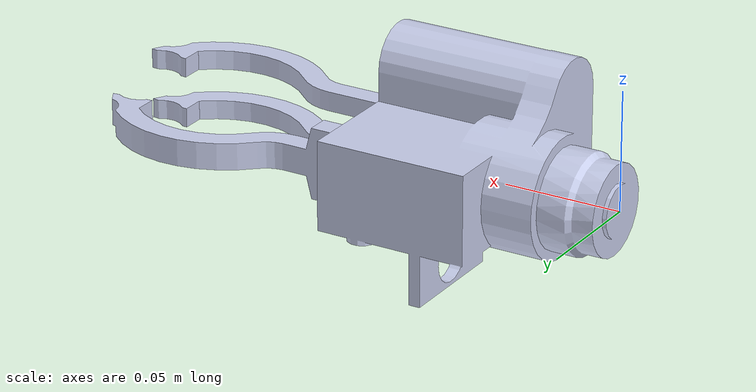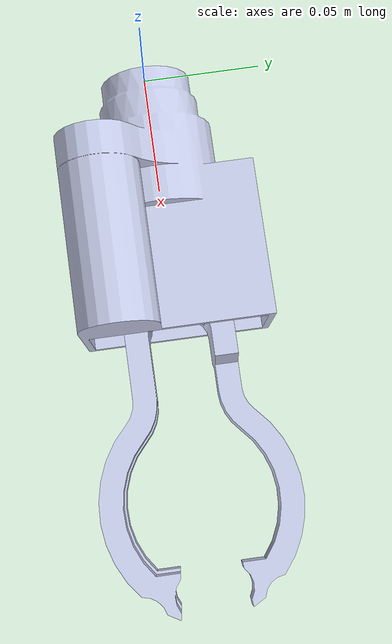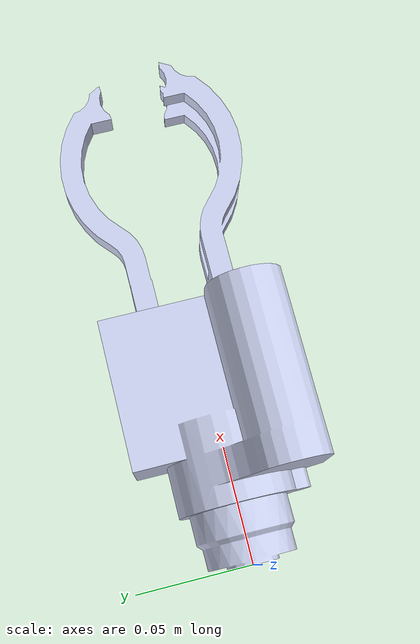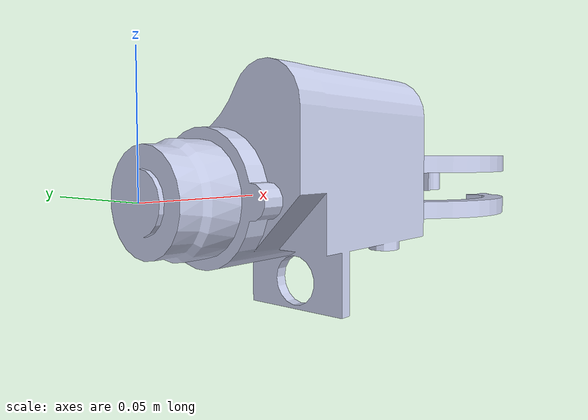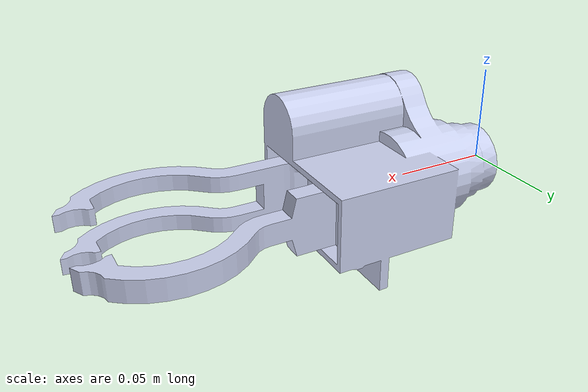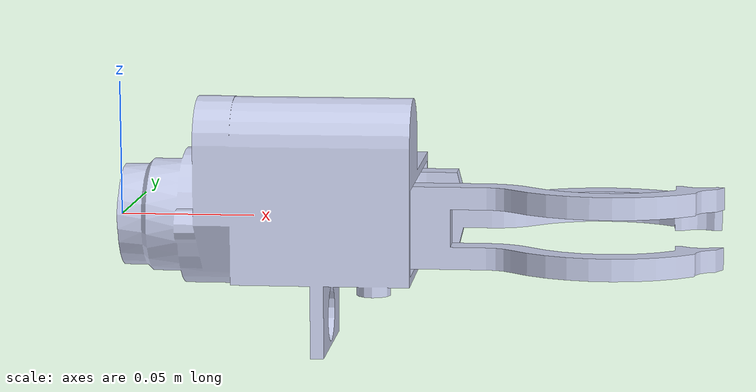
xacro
<?xml version="1.0"?>
<robot name="two_finger_gripper" xmlns:xacro="http://www.ros.org/wiki/xacro">

  <xacro:property name="finger_mechanical_reduction" value="304.0"/>
  <xacro:property name="finger_motor_torque_constant" value="3.0"/>
  <xacro:property name="joint_effort_limit" value="3.0"/>
  <xacro:property name="joint_velocity_limit" value="2.98452"/>
	<xacro:property name="finger_lower_limit" value="-0.5"/>
	<xacro:property name="finger_upper_limit" value="0.5"/>

  <xacro:include filename="$(find rb1_arm_description)/urdf/grippers/two_finger_gripper.gazebo.xacro" />

  <link
    name="base_link_gripper">
    <inertial>
      <origin
        xyz="0.0 0.0 0.0"
        rpy="0 0 0" />
      <mass
        value="0.2735" />
      <inertia
        ixx="0.2735"
        ixy="0.0"
        ixz="0.0"
        iyy="0.2735"
        iyz="0.0"
        izz="0.2735" />
    </inertial>
    <visual>
      <origin
        xyz="0 0 0"
        rpy="0 0 0" />
      <geometry>
        <mesh
          filename="package://rb1_arm_description/meshes/grippers/base_gripper.dae" />
      </geometry>
      <material
        name="">
        <color
          rgba="0.79216 0.81961 0.93333 1" />
      </material>
    </visual>
    <collision>
      <origin
        xyz="0 0 0"
        rpy="0 0 0" />
      <geometry>
        <mesh
          filename="package://rb1_arm_description/meshes/grippers/base_gripper.dae" />
      </geometry>
      <contact_coefficients kd="1.0" kp="1000.0" mu="0"/>
    </collision>
  </link>

  <link
    name="link_finger1">
    <inertial>
      <origin
        xyz="0.0 0.0 0.0"
        rpy="0 0 0" />
      <mass
        value="0.03" />
      <inertia
        ixx="0.03"
        ixy="0.0"
        ixz="0.0"
        iyy="0.03"
        iyz="0.0"
        izz="0.03" />
    </inertial>
    <visual>
      <origin
        xyz="0 0 0"
        rpy="0 0 0" />
      <geometry>
        <mesh
          filename="package://rb1_arm_description/meshes/grippers/finger1.dae" />
      </geometry>
      <material
        name="">
        <color
          rgba="0.792156862745098 0.819607843137255 0.933333333333333 1" />
      </material>
    </visual>
    <collision>
      <origin
        xyz="0 0 0"
        rpy="0 0 0" />
      <geometry>
        <mesh
          filename="package://rb1_arm_description/meshes/grippers/finger1.dae" />
      </geometry>
    </collision>
  </link>

  <joint
    name="jg1"
    type="revolute">
    <origin
      xyz="0.097993 0.028575 0"
      rpy="3.0028E-16 5.9154E-22 2.2204E-16" />
    <parent
      link="base_link_gripper" />
    <child
      link="link_finger1" />
    <axis
      xyz="0 0 -1" />
    <limit effort="${joint_effort_limit}" velocity="${joint_velocity_limit}" upper="${finger_upper_limit}" lower="${finger_lower_limit}"/>
    <dynamics damping="${joint_damping}" friction="${joint_friction}"/>
  </joint>

  <transmission name="jg1_trans">
	 <type>transmission_interface/SimpleTransmission</type>
     <joint name="jg1">
		<hardwareInterface>EffortJointInterface</hardwareInterface>
	 </joint>
     <actuator name="jg1_motor">
        <mechanicalReduction>${finger_mechanical_reduction}</mechanicalReduction>
		<motorTorqueConstant>${finger_motor_torque_constant}</motorTorqueConstant>
	 </actuator>
  </transmission>

  <link
    name="link_finger2">
    <inertial>
      <origin
        xyz="0.0 0.0 0.0"
        rpy="0 0 0" />
      <mass
        value="0.03" />
      <inertia
        ixx="0.03"
        ixy="0.0"
        ixz="0.0"
        iyy="0.03"
        iyz="0.0"
        izz="0.03" />
    </inertial>
    <visual>
      <origin
        xyz="0 0 0"
        rpy="0 0 0" />
      <geometry>
        <mesh
          filename="package://rb1_arm_description/meshes/grippers/finger2.dae" />
      </geometry>
      <material
        name="">
        <color
          rgba="0.792156862745098 0.819607843137255 0.933333333333333 1" />
      </material>
    </visual>
    <collision>
      <origin
        xyz="0 0 0"
        rpy="0 0 0" />
      <geometry>
        <mesh
          filename="package://rb1_arm_description/meshes/grippers/finger2.dae" />
      </geometry>
    </collision>
  </link>
  <joint
    name="jg2"
    type="revolute">
    <origin
      xyz="0.097993 -0.028575 0"
      rpy="3.0028E-16 7.477E-22 -5.1764E-15" />
    <parent
      link="base_link_gripper" />
    <child
      link="link_finger2" />
    <axis
      xyz="0 0 1" />
    <limit effort="${joint_effort_limit}" velocity="${joint_velocity_limit}" upper="${finger_upper_limit}" lower="${finger_lower_limit}"/>
    <dynamics damping="${joint_damping}" friction="${joint_friction}"/>
  </joint>

  <transmission name="jg2_trans">
	 <type>transmission_interface/SimpleTransmission</type>
     <joint name="jg2">
		 <hardwareInterface>EffortJointInterface</hardwareInterface>
     </joint>
     <actuator name="jg2_motor">
        <mechanicalReduction>${finger_mechanical_reduction}</mechanicalReduction>
		<motorTorqueConstant>${finger_motor_torque_constant}</motorTorqueConstant>
	 </actuator>
  </transmission>

  <!-- Grasp link GRIPPER  -->
	<link name="gripper_grasp_link1">
	</link>

	<joint name="gripper_grasp_joint1" type="fixed">
		<origin xyz="0.14 0 0" rpy="0.0 0.0 0.0" />
		<parent link="base_link_gripper"/>
		<child link="gripper_grasp_link1"/>
	</joint>

  <!-- TCP management -->
  <!-- Import all Gazebo-customization elements, including Gazebo colors -->
  <!-- xacro:include filename="$(find rb1_arm_description)/urdf/tcp.urdf.xacro" / -->

</robot>
